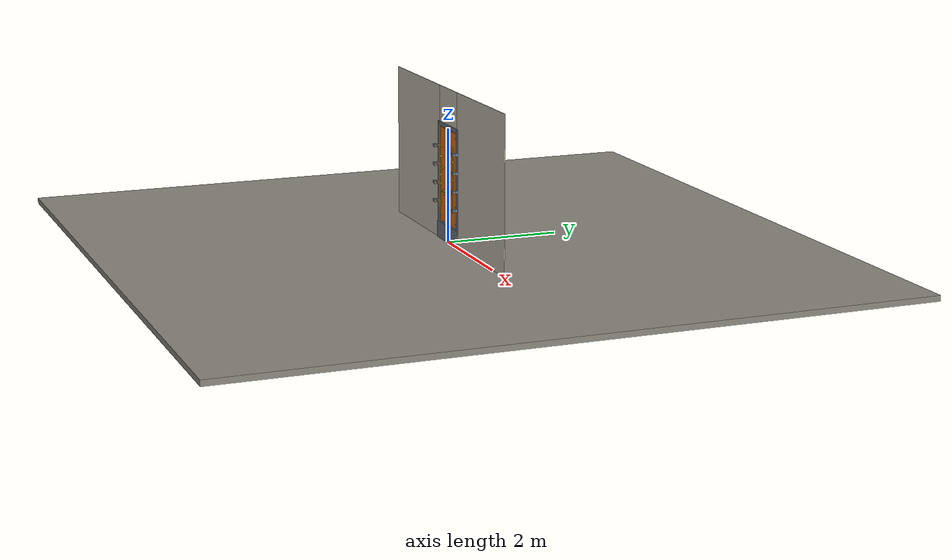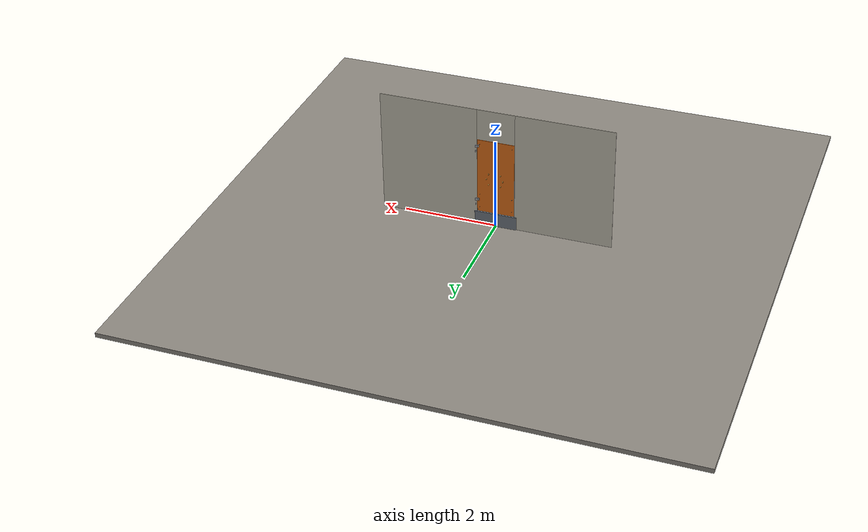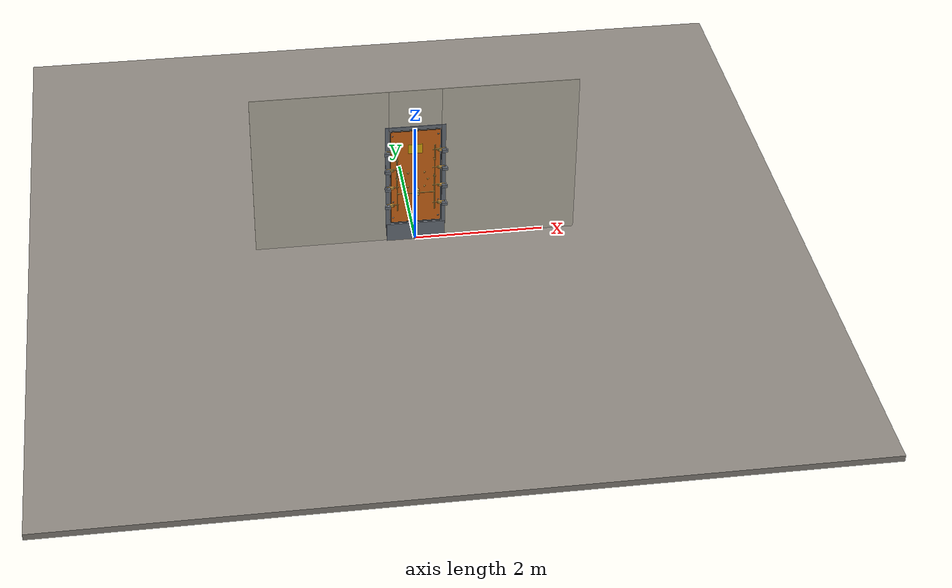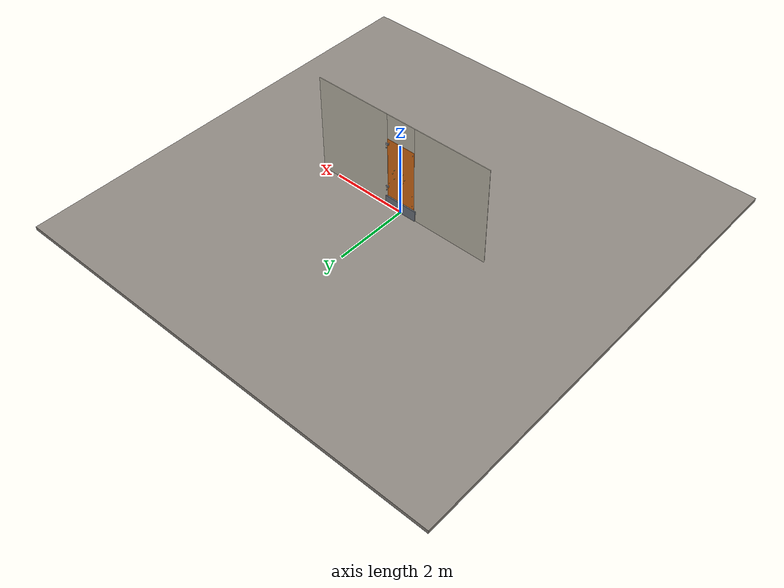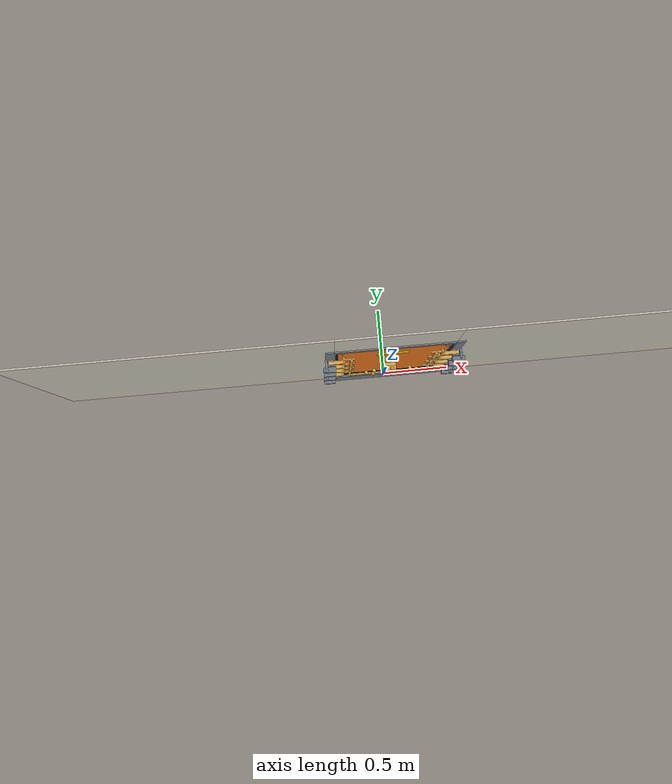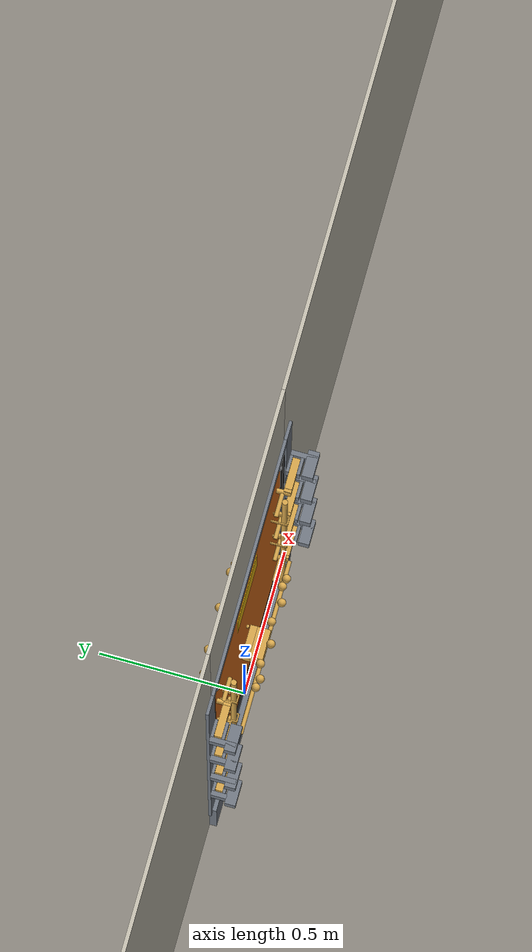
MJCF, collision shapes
<?xml version="1.0" ?>
<mujoco model="db0314_ship_watertight_full">
  <compiler angle="radian" meshdir="../../hardware" texturedir="../../textures" autolimits="true" inertiafromgeom="false"/>
  <option timestep="0.002" integrator="implicitfast" cone="elliptic" impratio="10" noslip_iterations="3">
    <flag multiccd="enable"/>
  </option>
  <size memory="16M"/>
  <default>
    <geom condim="4" solref="0.005 1" solimp="0.95 0.99 0.001"/>
    <joint solreflimit="0.005 1" solimplimit="0.95 0.99 0.001"/>
    <tendon solreflimit="0.005 1"/>
    <equality solref="0.002 1"/>
  </default>
  <visual>
    <headlight ambient="0.4 0.4 0.4" diffuse="0.7 0.7 0.7" specular="0.2 0.2 0.2"/>
    <quality shadowsize="4096"/>
    <map znear="0.01" zfar="60"/>
  </visual>
  <asset>
    <mesh name="hinge_aa6f1f959a" file="hinge_aa6f1f959a.obj"/>
    <mesh name="hinge_jamb_5a3d6f5c54" file="hinge_jamb_5a3d6f5c54.obj"/>
    <mesh name="wheel_9768cee49b" file="wheel_9768cee49b.obj"/>
    <material name="mat_floor" rgba="0.55 0.53 0.5 1" specular="0.2" shininess="0.15" reflectance="0"/>
    <material name="mat_wall" rgba="0.78 0.76 0.7 1" specular="0.2" shininess="0.1" reflectance="0"/>
    <material name="mat_leaf" rgba="0.9 0.45 0.1 1" specular="0.23" shininess="0.32" reflectance="0.02"/>
    <material name="mat_rivet" rgba="0.55 0.56 0.58 1" specular="0.8" shininess="0.55" reflectance="0.4"/>
    <material name="mat_frame" rgba="0.45 0.48 0.52 1" specular="0.32" shininess="0.6" reflectance="0.08"/>
    <material name="mat_gasket" rgba="0.08 0.08 0.08 1" specular="0.2" shininess="0.1" reflectance="0"/>
    <material name="mat_op_brass" rgba="0.85 0.66 0.3 1" specular="0.8" shininess="0.75" reflectance="0.4"/>
    <material name="mat_trim" rgba="0.85 0.66 0.3 1" specular="0.8" shininess="0.75" reflectance="0.4"/>
    <material name="mat_hinge" rgba="0.65 0.66 0.68 1" specular="0.74" shininess="0.5" reflectance="0.36"/>
    <material name="mat_placard" rgba="0.95 0.75 0.05 1" specular="0.2" shininess="0.5" reflectance="0"/>
    <texture name="skybox" type="skybox" builtin="gradient" rgb1="0.6 0.7 0.85" rgb2="0.9 0.92 0.95" width="256" height="256"/>
  </asset>
  <worldbody>
    <light name="sun" pos="1.5 -2.5 4" dir="-0.3 0.5 -0.8" directional="true" diffuse="0.8 0.8 0.8" specular="0.3 0.3 0.3" castshadow="true"/>
    <light name="fill" pos="-1.5 2.5 3" dir="0.3 -0.5 -0.7" directional="true" diffuse="0.35 0.35 0.4" castshadow="false"/>
    <camera name="robot_view" pos="0 -2.228125 1.628875" xyaxes="1 0 0 0 0.26963 0.962964" fovy="52"/>
    <camera name="far_view" pos="0 2.228125 1.628875" xyaxes="-1 0 0 0 -0.26963 0.962964" fovy="52"/>
    <camera name="iso" pos="-1.693375 -1.871625 1.985375" xyaxes="0.741536 -0.670913 0 0.242917 0.268487 0.932151" fovy="46"/>
    <camera name="detail_handle" pos="0.181 -0.884 1.61" xyaxes="0.97561 0.219512 0 -0.070934 0.315262 0.94635" fovy="38"/>
    <geom name="floor" type="box" size="6 6 0.05" pos="0 0 -0.05" material="mat_floor" group="0" contype="1" conaffinity="1" friction="0.8 0.005 0.0001" density="2400"/>
    <geom name="wall_left" type="box" size="1.0475 0.006 1.35" pos="-1.4525 0 1.35" material="mat_wall" group="0" contype="1" conaffinity="1" friction="0.6 0.005 0.0001" density="800"/>
    <geom name="wall_right" type="box" size="1.0475 0.006 1.35" pos="1.4525 0 1.35" material="mat_wall" group="0" contype="1" conaffinity="1" friction="0.6 0.005 0.0001" density="800"/>
    <geom name="wall_header" type="box" size="0.405 0.006 0.345" pos="0 0 2.355" material="mat_wall" group="0" contype="1" conaffinity="1" friction="0.6 0.005 0.0001" density="800"/>
    <geom name="flange_l" type="box" size="0.03 0.006 0.915" pos="-0.435 -0.01 1.155" material="mat_frame" group="0" contype="1" conaffinity="1" friction="0.6 0.005 0.0001" solref="0.02 1" density="7850"/>
    <geom name="flange_r" type="box" size="0.03 0.006 0.915" pos="0.435 -0.01 1.155" material="mat_frame" group="0" contype="1" conaffinity="1" friction="0.6 0.005 0.0001" solref="0.02 1" density="7850"/>
    <geom name="flange_t" type="box" size="0.405 0.006 0.03" pos="0 -0.01 2.04" material="mat_frame" group="0" contype="1" conaffinity="1" friction="0.6 0.005 0.0001" solref="0.02 1" density="7850"/>
    <geom name="flange_b" type="box" size="0.405 0.006 0.03" pos="0 -0.01 0.27" material="mat_frame" group="0" contype="1" conaffinity="1" friction="0.6 0.005 0.0001" solref="0.02 1" density="7850"/>
    <geom name="coaming" type="box" size="0.455 0.03 0.15" pos="0 0 0.15" material="mat_frame" group="0" contype="1" conaffinity="1" friction="0.6 0.005 0.0001" density="7850"/>
    <geom name="cleat_0" type="box" size="0.0275 0.005 0.025" pos="-0.4265 -0.0205 0.6625" material="mat_frame" group="0" contype="1" conaffinity="1" friction="0.6 0.005 0.0001" density="7850"/>
    <geom name="cleat_0_outer" type="box" size="0.0275 0.005 0.025" pos="-0.4265 -0.0555 0.6625" material="mat_frame" group="0" contype="1" conaffinity="1" friction="0.6 0.005 0.0001" density="7850"/>
    <geom name="cleat_0_base" type="box" size="0.0425 0.018 0.025" pos="-0.4415 -0.084 0.6625" material="mat_frame" group="0" contype="1" conaffinity="1" friction="0.6 0.005 0.0001" density="7850"/>
    <geom name="cleat_0_bridge" type="box" size="0.008 0.041 0.025" pos="-0.462 -0.057 0.6625" material="mat_frame" group="0" contype="1" conaffinity="1" friction="0.6 0.005 0.0001" density="7850"/>
    <geom name="cleat_1" type="box" size="0.0275 0.005 0.025" pos="0.4285 -0.0205 0.6625" material="mat_frame" group="0" contype="1" conaffinity="1" friction="0.6 0.005 0.0001" density="7850"/>
    <geom name="cleat_1_outer" type="box" size="0.0275 0.005 0.025" pos="0.4285 -0.0555 0.6625" material="mat_frame" group="0" contype="1" conaffinity="1" friction="0.6 0.005 0.0001" density="7850"/>
    <geom name="cleat_1_base" type="box" size="0.0425 0.018 0.025" pos="0.4435 -0.084 0.6625" material="mat_frame" group="0" contype="1" conaffinity="1" friction="0.6 0.005 0.0001" density="7850"/>
    <geom name="cleat_1_bridge" type="box" size="0.008 0.041 0.025" pos="0.464 -0.057 0.6625" material="mat_frame" group="0" contype="1" conaffinity="1" friction="0.6 0.005 0.0001" density="7850"/>
    <geom name="cleat_2" type="box" size="0.0275 0.005 0.025" pos="-0.4265 -0.0205 0.9875" material="mat_frame" group="0" contype="1" conaffinity="1" friction="0.6 0.005 0.0001" density="7850"/>
    <geom name="cleat_2_outer" type="box" size="0.0275 0.005 0.025" pos="-0.4265 -0.0555 0.9875" material="mat_frame" group="0" contype="1" conaffinity="1" friction="0.6 0.005 0.0001" density="7850"/>
    <geom name="cleat_2_base" type="box" size="0.0425 0.018 0.025" pos="-0.4415 -0.084 0.9875" material="mat_frame" group="0" contype="1" conaffinity="1" friction="0.6 0.005 0.0001" density="7850"/>
    <geom name="cleat_2_bridge" type="box" size="0.008 0.041 0.025" pos="-0.462 -0.057 0.9875" material="mat_frame" group="0" contype="1" conaffinity="1" friction="0.6 0.005 0.0001" density="7850"/>
    <geom name="cleat_3" type="box" size="0.0275 0.005 0.025" pos="0.4285 -0.0205 0.9875" material="mat_frame" group="0" contype="1" conaffinity="1" friction="0.6 0.005 0.0001" density="7850"/>
    <geom name="cleat_3_outer" type="box" size="0.0275 0.005 0.025" pos="0.4285 -0.0555 0.9875" material="mat_frame" group="0" contype="1" conaffinity="1" friction="0.6 0.005 0.0001" density="7850"/>
    <geom name="cleat_3_base" type="box" size="0.0425 0.018 0.025" pos="0.4435 -0.084 0.9875" material="mat_frame" group="0" contype="1" conaffinity="1" friction="0.6 0.005 0.0001" density="7850"/>
    <geom name="cleat_3_bridge" type="box" size="0.008 0.041 0.025" pos="0.464 -0.057 0.9875" material="mat_frame" group="0" contype="1" conaffinity="1" friction="0.6 0.005 0.0001" density="7850"/>
    <geom name="cleat_4" type="box" size="0.0275 0.005 0.025" pos="-0.4265 -0.0205 1.3125" material="mat_frame" group="0" contype="1" conaffinity="1" friction="0.6 0.005 0.0001" density="7850"/>
    <geom name="cleat_4_outer" type="box" size="0.0275 0.005 0.025" pos="-0.4265 -0.0555 1.3125" material="mat_frame" group="0" contype="1" conaffinity="1" friction="0.6 0.005 0.0001" density="7850"/>
    <geom name="cleat_4_base" type="box" size="0.0425 0.018 0.025" pos="-0.4415 -0.084 1.3125" material="mat_frame" group="0" contype="1" conaffinity="1" friction="0.6 0.005 0.0001" density="7850"/>
    <geom name="cleat_4_bridge" type="box" size="0.008 0.041 0.025" pos="-0.462 -0.057 1.3125" material="mat_frame" group="0" contype="1" conaffinity="1" friction="0.6 0.005 0.0001" density="7850"/>
    <geom name="cleat_5" type="box" size="0.0275 0.005 0.025" pos="0.4285 -0.0205 1.3125" material="mat_frame" group="0" contype="1" conaffinity="1" friction="0.6 0.005 0.0001" density="7850"/>
    <geom name="cleat_5_outer" type="box" size="0.0275 0.005 0.025" pos="0.4285 -0.0555 1.3125" material="mat_frame" group="0" contype="1" conaffinity="1" friction="0.6 0.005 0.0001" density="7850"/>
    <geom name="cleat_5_base" type="box" size="0.0425 0.018 0.025" pos="0.4435 -0.084 1.3125" material="mat_frame" group="0" contype="1" conaffinity="1" friction="0.6 0.005 0.0001" density="7850"/>
    <geom name="cleat_5_bridge" type="box" size="0.008 0.041 0.025" pos="0.464 -0.057 1.3125" material="mat_frame" group="0" contype="1" conaffinity="1" friction="0.6 0.005 0.0001" density="7850"/>
    <geom name="cleat_6" type="box" size="0.0275 0.005 0.025" pos="-0.4265 -0.0205 1.6375" material="mat_frame" group="0" contype="1" conaffinity="1" friction="0.6 0.005 0.0001" density="7850"/>
    <geom name="cleat_6_outer" type="box" size="0.0275 0.005 0.025" pos="-0.4265 -0.0555 1.6375" material="mat_frame" group="0" contype="1" conaffinity="1" friction="0.6 0.005 0.0001" density="7850"/>
    <geom name="cleat_6_base" type="box" size="0.0425 0.018 0.025" pos="-0.4415 -0.084 1.6375" material="mat_frame" group="0" contype="1" conaffinity="1" friction="0.6 0.005 0.0001" density="7850"/>
    <geom name="cleat_6_bridge" type="box" size="0.008 0.041 0.025" pos="-0.462 -0.057 1.6375" material="mat_frame" group="0" contype="1" conaffinity="1" friction="0.6 0.005 0.0001" density="7850"/>
    <geom name="cleat_7" type="box" size="0.0275 0.005 0.025" pos="0.4285 -0.0205 1.6375" material="mat_frame" group="0" contype="1" conaffinity="1" friction="0.6 0.005 0.0001" density="7850"/>
    <geom name="cleat_7_outer" type="box" size="0.0275 0.005 0.025" pos="0.4285 -0.0555 1.6375" material="mat_frame" group="0" contype="1" conaffinity="1" friction="0.6 0.005 0.0001" density="7850"/>
    <geom name="cleat_7_base" type="box" size="0.0425 0.018 0.025" pos="0.4435 -0.084 1.6375" material="mat_frame" group="0" contype="1" conaffinity="1" friction="0.6 0.005 0.0001" density="7850"/>
    <geom name="cleat_7_bridge" type="box" size="0.008 0.041 0.025" pos="0.464 -0.057 1.6375" material="mat_frame" group="0" contype="1" conaffinity="1" friction="0.6 0.005 0.0001" density="7850"/>
    <geom name="hinge_0_jamb" type="mesh" mesh="hinge_jamb_5a3d6f5c54" pos="0.435 0.024 0.554" quat="0 0 0 1" material="mat_hinge" group="1" contype="0" conaffinity="0" density="7850"/>
    <geom name="hinge_0_jamb_lug" type="box" size="0.01 0.004 0.02" pos="0.435 0.01 0.467" material="mat_hinge" group="1" contype="0" conaffinity="0" density="7850"/>
    <geom name="hinge_1_jamb" type="mesh" mesh="hinge_jamb_5a3d6f5c54" pos="0.435 0.024 1.824" quat="0 0 0 1" material="mat_hinge" group="1" contype="0" conaffinity="0" density="7850"/>
    <geom name="hinge_1_jamb_lug" type="box" size="0.01 0.004 0.02" pos="0.435 0.01 1.737" material="mat_hinge" group="1" contype="0" conaffinity="0" density="7850"/>
    <site name="approach_point" pos="0 -1.5 0" quat="1 0 0 0" size="0.05" rgba="0.2 0.9 0.2 0.5" group="4"/>
    <site name="goal_point" pos="0 1.5 0" quat="1 0 0 0" size="0.05" rgba="0.2 0.9 0.2 0.5" group="4"/>
    <site name="door_plane_center" pos="0 0 1.155" quat="1 0 0 0" size="0.02" rgba="0.2 0.9 0.2 0.5" group="4"/>
    <body name="leaf" pos="0.405 0 0.3">
      <inertial pos="-0.391122 -0.001907 0.840476" mass="86.167076" quat="0.501804 -0.500395 -0.500878 -0.496908" diaginertia="4.753482521 20.461829816 25.191326272"/>
      <joint name="leaf_hinge" type="hinge" axis="0 0 -1" pos="0.03 0.024 0" limited="true" range="0 2.356194" solreflimit="0.02 1" damping="0.175755" frictionloss="5.335522" armature="0.02"/>
      <geom name="leaf_slab" type="box" size="0.4 0.004 0.85" pos="-0.404 0 0.854" material="mat_leaf" group="0" contype="1" conaffinity="1" friction="0.4 0.005 0.0001" density="1"/>
      <geom name="leaf_rivet_0_0" type="sphere" size="0.012" pos="-0.054 -0.004 0.104" material="mat_rivet" group="2" contype="0" conaffinity="0" density="7850"/>
      <geom name="leaf_rivet_0_1" type="sphere" size="0.012" pos="-0.754 -0.004 0.104" material="mat_rivet" group="2" contype="0" conaffinity="0" density="7850"/>
      <geom name="leaf_rivet_1_0" type="sphere" size="0.012" pos="-0.054 -0.004 0.404" material="mat_rivet" group="2" contype="0" conaffinity="0" density="7850"/>
      <geom name="leaf_rivet_1_1" type="sphere" size="0.012" pos="-0.754 -0.004 0.404" material="mat_rivet" group="2" contype="0" conaffinity="0" density="7850"/>
      <geom name="leaf_rivet_5_0" type="sphere" size="0.012" pos="-0.054 -0.004 1.604" material="mat_rivet" group="2" contype="0" conaffinity="0" density="7850"/>
      <geom name="leaf_rivet_5_1" type="sphere" size="0.012" pos="-0.754 -0.004 1.604" material="mat_rivet" group="2" contype="0" conaffinity="0" density="7850"/>
      <geom name="gasket_l" type="box" size="0.01 0.004 0.84" pos="-0.014 -0.008 0.854" material="mat_gasket" group="1" contype="0" conaffinity="0" density="1100"/>
      <geom name="gasket_r" type="box" size="0.01 0.004 0.84" pos="-0.794 -0.008 0.854" material="mat_gasket" group="1" contype="0" conaffinity="0" density="1100"/>
      <geom name="gasket_b" type="box" size="0.39 0.004 0.01" pos="-0.404 -0.008 0.014" material="mat_gasket" group="1" contype="0" conaffinity="0" density="1100"/>
      <geom name="gasket_t" type="box" size="0.39 0.004 0.01" pos="-0.404 -0.008 1.694" material="mat_gasket" group="1" contype="0" conaffinity="0" density="1100"/>
      <geom name="wheel_gearbox_mount" type="box" size="0.05 0.0125 0.045" pos="-0.404 -0.0155 0.59" material="mat_op_brass" group="1" contype="0" conaffinity="0" density="7800"/>
      <geom name="wheel_gearbox" type="box" size="0.05 0.022 0.045" pos="-0.404 -0.049 0.59" material="mat_op_brass" group="1" contype="0" conaffinity="0" density="7800"/>
      <geom name="linkage_rod_r_guide_0_leg_n" type="box" size="0.008 0.002 0.02725" pos="-0.6815 -0.03125 0.85" quat="0.5 0.5 -0.5 0.5" material="mat_op_brass" group="1" contype="0" conaffinity="0" density="7800"/>
      <geom name="linkage_rod_r_guide_0_leg_p" type="box" size="0.008 0.002 0.02725" pos="-0.7065 -0.03125 0.85" quat="0.5 0.5 -0.5 0.5" material="mat_op_brass" group="1" contype="0" conaffinity="0" density="7800"/>
      <geom name="linkage_rod_r_guide_0_bridge" type="box" size="0.008 0.0145 0.002" pos="-0.694 -0.0565 0.85" quat="0.5 0.5 -0.5 0.5" material="mat_op_brass" group="1" contype="0" conaffinity="0" density="7800"/>
      <geom name="linkage_rod_r_guide_1_leg_n" type="box" size="0.008 0.002 0.02725" pos="-0.6815 -0.03125 1.175" quat="0.5 0.5 -0.5 0.5" material="mat_op_brass" group="1" contype="0" conaffinity="0" density="7800"/>
      <geom name="linkage_rod_r_guide_1_leg_p" type="box" size="0.008 0.002 0.02725" pos="-0.7065 -0.03125 1.175" quat="0.5 0.5 -0.5 0.5" material="mat_op_brass" group="1" contype="0" conaffinity="0" density="7800"/>
      <geom name="linkage_rod_r_guide_1_bridge" type="box" size="0.008 0.0145 0.002" pos="-0.694 -0.0565 1.175" quat="0.5 0.5 -0.5 0.5" material="mat_op_brass" group="1" contype="0" conaffinity="0" density="7800"/>
      <geom name="linkage_rod_l_guide_0_leg_n" type="box" size="0.008 0.002 0.02725" pos="-0.1015 -0.03125 0.85" quat="0.5 0.5 -0.5 0.5" material="mat_op_brass" group="1" contype="0" conaffinity="0" density="7800"/>
      <geom name="linkage_rod_l_guide_0_leg_p" type="box" size="0.008 0.002 0.02725" pos="-0.1265 -0.03125 0.85" quat="0.5 0.5 -0.5 0.5" material="mat_op_brass" group="1" contype="0" conaffinity="0" density="7800"/>
      <geom name="linkage_rod_l_guide_0_bridge" type="box" size="0.008 0.0145 0.002" pos="-0.114 -0.0565 0.85" quat="0.5 0.5 -0.5 0.5" material="mat_op_brass" group="1" contype="0" conaffinity="0" density="7800"/>
      <geom name="linkage_rod_l_guide_1_leg_n" type="box" size="0.008 0.002 0.02725" pos="-0.1015 -0.03125 1.175" quat="0.5 0.5 -0.5 0.5" material="mat_op_brass" group="1" contype="0" conaffinity="0" density="7800"/>
      <geom name="linkage_rod_l_guide_1_leg_p" type="box" size="0.008 0.002 0.02725" pos="-0.1265 -0.03125 1.175" quat="0.5 0.5 -0.5 0.5" material="mat_op_brass" group="1" contype="0" conaffinity="0" density="7800"/>
      <geom name="linkage_rod_l_guide_1_bridge" type="box" size="0.008 0.0145 0.002" pos="-0.114 -0.0565 1.175" quat="0.5 0.5 -0.5 0.5" material="mat_op_brass" group="1" contype="0" conaffinity="0" density="7800"/>
      <geom name="linkage_tube" type="cylinder" size="0.007 0.29" pos="-0.404 -0.066 0.59" quat="0.707107 0 0.707107 0" material="mat_op_brass" group="1" contype="0" conaffinity="0" density="7800"/>
      <geom name="hinge_0" type="mesh" mesh="hinge_aa6f1f959a" pos="0.03 0.024 0.254" quat="0 0 0 1" material="mat_hinge" group="1" contype="0" conaffinity="0" density="7850"/>
      <geom name="hinge_0_lug_foot" type="box" size="0.02 0.0045 0.03" pos="-0.026 0.0085 0.287" material="mat_hinge" group="1" contype="0" conaffinity="0" density="7850"/>
      <geom name="hinge_0_lug" type="box" size="0.026 0.0095 0.03" pos="0.01 0.0205 0.287" material="mat_hinge" group="1" contype="0" conaffinity="0" density="7850"/>
      <geom name="hinge_1" type="mesh" mesh="hinge_aa6f1f959a" pos="0.03 0.024 1.524" quat="0 0 0 1" material="mat_hinge" group="1" contype="0" conaffinity="0" density="7850"/>
      <geom name="hinge_1_lug_foot" type="box" size="0.02 0.0045 0.03" pos="-0.026 0.0085 1.557" material="mat_hinge" group="1" contype="0" conaffinity="0" density="7850"/>
      <geom name="hinge_1_lug" type="box" size="0.026 0.0095 0.03" pos="0.01 0.0205 1.557" material="mat_hinge" group="1" contype="0" conaffinity="0" density="7850"/>
      <geom name="warning_placard" type="box" size="0.11 0.001 0.08" pos="-0.404 -0.005 1.36" material="mat_placard" group="2" contype="0" conaffinity="0" density="1000"/>
      <body name="wheel" pos="-0.404 0 0.85">
        <inertial pos="0 0 0" mass="5.986828" quat="0 0 0.707107 0.707107" diaginertia="0.115516198 0.115516198 0.148211455"/>
        <joint name="wheel_hinge" type="hinge" axis="0 1 0" limited="true" range="0 9.4248" damping="0.5" frictionloss="2" armature="0.01"/>
        <geom name="wheel_spindle" type="cylinder" size="0.006 0.012" pos="0 0 0" quat="0.707107 -0.707107 0 0" material="mat_op_brass" group="1" contype="0" conaffinity="0" density="7850"/>
        <geom name="wheel_wheel_n" type="mesh" mesh="wheel_9768cee49b" pos="0 -0.004 0" quat="0 0 -0.707107 0.707107" material="mat_op_brass" group="1" contype="0" conaffinity="0" density="3000"/>
        <geom name="wheel_wheel_col_0_n" type="sphere" size="0.014" pos="0.18 -0.084 0" material="mat_op_brass" group="0" contype="1" conaffinity="1" friction="0.6 0.005 0.0001" density="3000"/>
        <geom name="wheel_wheel_col_1_n" type="sphere" size="0.014" pos="0.127279 -0.084 0.127279" material="mat_op_brass" group="0" contype="1" conaffinity="1" friction="0.6 0.005 0.0001" density="3000"/>
        <geom name="wheel_wheel_col_2_n" type="sphere" size="0.014" pos="0 -0.084 0.18" material="mat_op_brass" group="0" contype="1" conaffinity="1" friction="0.6 0.005 0.0001" density="3000"/>
        <geom name="wheel_wheel_col_3_n" type="sphere" size="0.014" pos="-0.127279 -0.084 0.127279" material="mat_op_brass" group="0" contype="1" conaffinity="1" friction="0.6 0.005 0.0001" density="3000"/>
        <geom name="wheel_wheel_col_4_n" type="sphere" size="0.014" pos="-0.18 -0.084 0" material="mat_op_brass" group="0" contype="1" conaffinity="1" friction="0.6 0.005 0.0001" density="3000"/>
        <geom name="wheel_wheel_col_5_n" type="sphere" size="0.014" pos="-0.127279 -0.084 -0.127279" material="mat_op_brass" group="0" contype="1" conaffinity="1" friction="0.6 0.005 0.0001" density="3000"/>
        <geom name="wheel_wheel_col_6_n" type="sphere" size="0.014" pos="0 -0.084 -0.18" material="mat_op_brass" group="0" contype="1" conaffinity="1" friction="0.6 0.005 0.0001" density="3000"/>
        <geom name="wheel_wheel_col_7_n" type="sphere" size="0.014" pos="0.127279 -0.084 -0.127279" material="mat_op_brass" group="0" contype="1" conaffinity="1" friction="0.6 0.005 0.0001" density="3000"/>
        <geom name="wheel_wheel_p" type="mesh" mesh="wheel_9768cee49b" pos="0 0.004 0" quat="0 0 0.707107 0.707107" material="mat_op_brass" group="1" contype="0" conaffinity="0" density="3000"/>
        <geom name="wheel_wheel_col_0_p" type="sphere" size="0.014" pos="0.18 0.084 0" material="mat_op_brass" group="0" contype="1" conaffinity="1" friction="0.6 0.005 0.0001" density="3000"/>
        <geom name="wheel_wheel_col_1_p" type="sphere" size="0.014" pos="0.127279 0.084 0.127279" material="mat_op_brass" group="0" contype="1" conaffinity="1" friction="0.6 0.005 0.0001" density="3000"/>
        <geom name="wheel_wheel_col_2_p" type="sphere" size="0.014" pos="0 0.084 0.18" material="mat_op_brass" group="0" contype="1" conaffinity="1" friction="0.6 0.005 0.0001" density="3000"/>
        <geom name="wheel_wheel_col_3_p" type="sphere" size="0.014" pos="-0.127279 0.084 0.127279" material="mat_op_brass" group="0" contype="1" conaffinity="1" friction="0.6 0.005 0.0001" density="3000"/>
        <geom name="wheel_wheel_col_4_p" type="sphere" size="0.014" pos="-0.18 0.084 0" material="mat_op_brass" group="0" contype="1" conaffinity="1" friction="0.6 0.005 0.0001" density="3000"/>
        <geom name="wheel_wheel_col_5_p" type="sphere" size="0.014" pos="-0.127279 0.084 -0.127279" material="mat_op_brass" group="0" contype="1" conaffinity="1" friction="0.6 0.005 0.0001" density="3000"/>
        <geom name="wheel_wheel_col_6_p" type="sphere" size="0.014" pos="0 0.084 -0.18" material="mat_op_brass" group="0" contype="1" conaffinity="1" friction="0.6 0.005 0.0001" density="3000"/>
        <geom name="wheel_wheel_col_7_p" type="sphere" size="0.014" pos="0.127279 0.084 -0.127279" material="mat_op_brass" group="0" contype="1" conaffinity="1" friction="0.6 0.005 0.0001" density="3000"/>
        <site name="wheel_grip_n" pos="0 -0.084 0.18" quat="1 0 0 0" size="0.012" rgba="0.2 0.9 0.2 0.5" group="4"/>
        <site name="wheel_grip_p" pos="0 0.084 0.18" quat="1 0 0 0" size="0.012" rgba="0.2 0.9 0.2 0.5" group="4"/>
      </body>
      <body name="dog_0" pos="-0.744 0 0.3625">
        <inertial pos="-0.03941 -0.036144 0" mass="1.27371" quat="0.706505 0.706505 0.029155 0.029155" diaginertia="0.000225936 0.00196141 0.002015712"/>
        <joint name="dog_0_hinge" type="hinge" axis="0 -1 0" limited="true" range="0 1.5708" damping="0.5" frictionloss="0.5" armature="0.005"/>
        <geom name="dog_0_rod_crank" type="cylinder" size="0.007 0.04" pos="0.04 -0.024 0" quat="0.707107 0 0.707107 0" material="mat_op_brass" group="1" contype="0" conaffinity="0" density="7800"/>
        <geom name="dog_0_wedge" type="box" size="0.05 0.012 0.02" pos="-0.06 -0.038 0" material="mat_op_brass" group="0" contype="1" conaffinity="1" friction="0.6 0.005 0.0001" density="7800"/>
        <geom name="dog_0_shaft" type="cylinder" size="0.008 0.025" pos="0 -0.025 0" quat="0.707107 -0.707107 0 0" material="mat_op_brass" group="1" contype="0" conaffinity="0" density="7800"/>
        <geom name="dog_0_crank" type="box" size="0.026 0.012 0.018" pos="-0.026 -0.038 0" material="mat_op_brass" group="1" contype="0" conaffinity="0" density="7800"/>
      </body>
      <body name="dog_1" pos="-0.064 0 0.3625">
        <inertial pos="0.03941 -0.036144 0" mass="1.27371" quat="0.706505 0.706505 -0.029155 -0.029155" diaginertia="0.000225936 0.00196141 0.002015712"/>
        <joint name="dog_1_hinge" type="hinge" axis="0 1 0" limited="true" range="0 1.5708" damping="0.5" frictionloss="0.5" armature="0.005"/>
        <geom name="dog_1_rod_crank" type="cylinder" size="0.007 0.04" pos="-0.04 -0.024 0" quat="0.707107 0 0.707107 0" material="mat_op_brass" group="1" contype="0" conaffinity="0" density="7800"/>
        <geom name="dog_1_wedge" type="box" size="0.05 0.012 0.02" pos="0.06 -0.038 0" material="mat_op_brass" group="0" contype="1" conaffinity="1" friction="0.6 0.005 0.0001" density="7800"/>
        <geom name="dog_1_shaft" type="cylinder" size="0.008 0.025" pos="0 -0.025 0" quat="0.707107 -0.707107 0 0" material="mat_op_brass" group="1" contype="0" conaffinity="0" density="7800"/>
        <geom name="dog_1_crank" type="box" size="0.026 0.012 0.018" pos="0.026 -0.038 0" material="mat_op_brass" group="1" contype="0" conaffinity="0" density="7800"/>
      </body>
      <body name="dog_2" pos="-0.744 0 0.6875">
        <inertial pos="-0.03941 -0.036144 0" mass="1.27371" quat="0.706505 0.706505 0.029155 0.029155" diaginertia="0.000225936 0.00196141 0.002015712"/>
        <joint name="dog_2_hinge" type="hinge" axis="0 -1 0" limited="true" range="0 1.5708" damping="0.5" frictionloss="0.5" armature="0.005"/>
        <geom name="dog_2_rod_crank" type="cylinder" size="0.007 0.04" pos="0.04 -0.024 0" quat="0.707107 0 0.707107 0" material="mat_op_brass" group="1" contype="0" conaffinity="0" density="7800"/>
        <geom name="dog_2_wedge" type="box" size="0.05 0.012 0.02" pos="-0.06 -0.038 0" material="mat_op_brass" group="0" contype="1" conaffinity="1" friction="0.6 0.005 0.0001" density="7800"/>
        <geom name="dog_2_shaft" type="cylinder" size="0.008 0.025" pos="0 -0.025 0" quat="0.707107 -0.707107 0 0" material="mat_op_brass" group="1" contype="0" conaffinity="0" density="7800"/>
        <geom name="dog_2_crank" type="box" size="0.026 0.012 0.018" pos="-0.026 -0.038 0" material="mat_op_brass" group="1" contype="0" conaffinity="0" density="7800"/>
      </body>
      <body name="dog_3" pos="-0.064 0 0.6875">
        <inertial pos="0.03941 -0.036144 0" mass="1.27371" quat="0.706505 0.706505 -0.029155 -0.029155" diaginertia="0.000225936 0.00196141 0.002015712"/>
        <joint name="dog_3_hinge" type="hinge" axis="0 1 0" limited="true" range="0 1.5708" damping="0.5" frictionloss="0.5" armature="0.005"/>
        <geom name="dog_3_rod_crank" type="cylinder" size="0.007 0.04" pos="-0.04 -0.024 0" quat="0.707107 0 0.707107 0" material="mat_op_brass" group="1" contype="0" conaffinity="0" density="7800"/>
        <geom name="dog_3_wedge" type="box" size="0.05 0.012 0.02" pos="0.06 -0.038 0" material="mat_op_brass" group="0" contype="1" conaffinity="1" friction="0.6 0.005 0.0001" density="7800"/>
        <geom name="dog_3_shaft" type="cylinder" size="0.008 0.025" pos="0 -0.025 0" quat="0.707107 -0.707107 0 0" material="mat_op_brass" group="1" contype="0" conaffinity="0" density="7800"/>
        <geom name="dog_3_crank" type="box" size="0.026 0.012 0.018" pos="0.026 -0.038 0" material="mat_op_brass" group="1" contype="0" conaffinity="0" density="7800"/>
      </body>
      <body name="dog_4" pos="-0.744 0 1.0125">
        <inertial pos="-0.03941 -0.036144 0" mass="1.27371" quat="0.706505 0.706505 0.029155 0.029155" diaginertia="0.000225936 0.00196141 0.002015712"/>
        <joint name="dog_4_hinge" type="hinge" axis="0 -1 0" limited="true" range="0 1.5708" damping="0.5" frictionloss="0.5" armature="0.005"/>
        <geom name="dog_4_rod_crank" type="cylinder" size="0.007 0.04" pos="0.04 -0.024 0" quat="0.707107 0 0.707107 0" material="mat_op_brass" group="1" contype="0" conaffinity="0" density="7800"/>
        <geom name="dog_4_wedge" type="box" size="0.05 0.012 0.02" pos="-0.06 -0.038 0" material="mat_op_brass" group="0" contype="1" conaffinity="1" friction="0.6 0.005 0.0001" density="7800"/>
        <geom name="dog_4_shaft" type="cylinder" size="0.008 0.025" pos="0 -0.025 0" quat="0.707107 -0.707107 0 0" material="mat_op_brass" group="1" contype="0" conaffinity="0" density="7800"/>
        <geom name="dog_4_crank" type="box" size="0.026 0.012 0.018" pos="-0.026 -0.038 0" material="mat_op_brass" group="1" contype="0" conaffinity="0" density="7800"/>
      </body>
      <body name="dog_5" pos="-0.064 0 1.0125">
        <inertial pos="0.03941 -0.036144 0" mass="1.27371" quat="0.706505 0.706505 -0.029155 -0.029155" diaginertia="0.000225936 0.00196141 0.002015712"/>
        <joint name="dog_5_hinge" type="hinge" axis="0 1 0" limited="true" range="0 1.5708" damping="0.5" frictionloss="0.5" armature="0.005"/>
        <geom name="dog_5_rod_crank" type="cylinder" size="0.007 0.04" pos="-0.04 -0.024 0" quat="0.707107 0 0.707107 0" material="mat_op_brass" group="1" contype="0" conaffinity="0" density="7800"/>
        <geom name="dog_5_wedge" type="box" size="0.05 0.012 0.02" pos="0.06 -0.038 0" material="mat_op_brass" group="0" contype="1" conaffinity="1" friction="0.6 0.005 0.0001" density="7800"/>
        <geom name="dog_5_shaft" type="cylinder" size="0.008 0.025" pos="0 -0.025 0" quat="0.707107 -0.707107 0 0" material="mat_op_brass" group="1" contype="0" conaffinity="0" density="7800"/>
        <geom name="dog_5_crank" type="box" size="0.026 0.012 0.018" pos="0.026 -0.038 0" material="mat_op_brass" group="1" contype="0" conaffinity="0" density="7800"/>
      </body>
      <body name="dog_6" pos="-0.744 0 1.3375">
        <inertial pos="-0.03941 -0.036144 0" mass="1.27371" quat="0.706505 0.706505 0.029155 0.029155" diaginertia="0.000225936 0.00196141 0.002015712"/>
        <joint name="dog_6_hinge" type="hinge" axis="0 -1 0" limited="true" range="0 1.5708" damping="0.5" frictionloss="0.5" armature="0.005"/>
        <geom name="dog_6_rod_crank" type="cylinder" size="0.007 0.04" pos="0.04 -0.024 0" quat="0.707107 0 0.707107 0" material="mat_op_brass" group="1" contype="0" conaffinity="0" density="7800"/>
        <geom name="dog_6_wedge" type="box" size="0.05 0.012 0.02" pos="-0.06 -0.038 0" material="mat_op_brass" group="0" contype="1" conaffinity="1" friction="0.6 0.005 0.0001" density="7800"/>
        <geom name="dog_6_shaft" type="cylinder" size="0.008 0.025" pos="0 -0.025 0" quat="0.707107 -0.707107 0 0" material="mat_op_brass" group="1" contype="0" conaffinity="0" density="7800"/>
        <geom name="dog_6_crank" type="box" size="0.026 0.012 0.018" pos="-0.026 -0.038 0" material="mat_op_brass" group="1" contype="0" conaffinity="0" density="7800"/>
      </body>
      <body name="dog_7" pos="-0.064 0 1.3375">
        <inertial pos="0.03941 -0.036144 0" mass="1.27371" quat="0.706505 0.706505 -0.029155 -0.029155" diaginertia="0.000225936 0.00196141 0.002015712"/>
        <joint name="dog_7_hinge" type="hinge" axis="0 1 0" limited="true" range="0 1.5708" damping="0.5" frictionloss="0.5" armature="0.005"/>
        <geom name="dog_7_rod_crank" type="cylinder" size="0.007 0.04" pos="-0.04 -0.024 0" quat="0.707107 0 0.707107 0" material="mat_op_brass" group="1" contype="0" conaffinity="0" density="7800"/>
        <geom name="dog_7_wedge" type="box" size="0.05 0.012 0.02" pos="0.06 -0.038 0" material="mat_op_brass" group="0" contype="1" conaffinity="1" friction="0.6 0.005 0.0001" density="7800"/>
        <geom name="dog_7_shaft" type="cylinder" size="0.008 0.025" pos="0 -0.025 0" quat="0.707107 -0.707107 0 0" material="mat_op_brass" group="1" contype="0" conaffinity="0" density="7800"/>
        <geom name="dog_7_crank" type="box" size="0.026 0.012 0.018" pos="0.026 -0.038 0" material="mat_op_brass" group="1" contype="0" conaffinity="0" density="7800"/>
      </body>
      <body name="linkage_rod_r" pos="-0.694 0 0">
        <inertial pos="0 -0.044 0.85" mass="2.332208" quat="0.707107 0 0.707107 0" diaginertia="0.000094454 0.268372666 0.268372666"/>
        <joint name="linkage_rod_r_slide" type="slide" axis="0 0 1" limited="true" range="0 0.05" damping="2" frictionloss="0.5" armature="0.05"/>
        <geom name="linkage_rod_r_geom" type="cylinder" size="0.009 0.5875" pos="0 -0.044 0.85" material="mat_op_brass" group="1" contype="0" conaffinity="0" density="7800"/>
      </body>
      <body name="linkage_rod_l" pos="-0.114 0 0">
        <inertial pos="0 -0.044 0.85" mass="2.332208" quat="0.707107 0 0.707107 0" diaginertia="0.000094454 0.268372666 0.268372666"/>
        <joint name="linkage_rod_l_slide" type="slide" axis="0 0 1" limited="true" range="0 0.05" damping="2" frictionloss="0.5" armature="0.05"/>
        <geom name="linkage_rod_l_geom" type="cylinder" size="0.009 0.5875" pos="0 -0.044 0.85" material="mat_op_brass" group="1" contype="0" conaffinity="0" density="7800"/>
      </body>
    </body>
  </worldbody>
  <equality>
    <joint name="wheel_dog_0" joint1="dog_0_hinge" joint2="wheel_hinge" polycoef="0 0.166667 0 0 0" active="true"/>
    <joint name="wheel_dog_1" joint1="dog_1_hinge" joint2="wheel_hinge" polycoef="0 0.166667 0 0 0" active="true"/>
    <joint name="wheel_dog_2" joint1="dog_2_hinge" joint2="wheel_hinge" polycoef="0 0.166667 0 0 0" active="true"/>
    <joint name="wheel_dog_3" joint1="dog_3_hinge" joint2="wheel_hinge" polycoef="0 0.166667 0 0 0" active="true"/>
    <joint name="wheel_dog_4" joint1="dog_4_hinge" joint2="wheel_hinge" polycoef="0 0.166667 0 0 0" active="true"/>
    <joint name="wheel_dog_5" joint1="dog_5_hinge" joint2="wheel_hinge" polycoef="0 0.166667 0 0 0" active="true"/>
    <joint name="wheel_dog_6" joint1="dog_6_hinge" joint2="wheel_hinge" polycoef="0 0.166667 0 0 0" active="true"/>
    <joint name="wheel_dog_7" joint1="dog_7_hinge" joint2="wheel_hinge" polycoef="0 0.166667 0 0 0" active="true"/>
    <joint name="wheel_rod_r" joint1="linkage_rod_r_slide" joint2="wheel_hinge" polycoef="0 0.005305 0 0 0" active="true"/>
    <joint name="wheel_rod_l" joint1="linkage_rod_l_slide" joint2="wheel_hinge" polycoef="0 0.005305 0 0 0" active="true"/>
  </equality>
  <sensor>
    <jointpos name="leaf_hinge_pos" joint="leaf_hinge"/>
    <jointvel name="leaf_hinge_vel" joint="leaf_hinge"/>
    <jointpos name="wheel_hinge_pos" joint="wheel_hinge"/>
    <jointvel name="wheel_hinge_vel" joint="wheel_hinge"/>
    <jointpos name="dog_0_hinge_pos" joint="dog_0_hinge"/>
    <jointvel name="dog_0_hinge_vel" joint="dog_0_hinge"/>
    <jointpos name="dog_1_hinge_pos" joint="dog_1_hinge"/>
    <jointvel name="dog_1_hinge_vel" joint="dog_1_hinge"/>
    <jointpos name="dog_2_hinge_pos" joint="dog_2_hinge"/>
    <jointvel name="dog_2_hinge_vel" joint="dog_2_hinge"/>
    <jointpos name="dog_3_hinge_pos" joint="dog_3_hinge"/>
    <jointvel name="dog_3_hinge_vel" joint="dog_3_hinge"/>
    <jointpos name="dog_4_hinge_pos" joint="dog_4_hinge"/>
    <jointvel name="dog_4_hinge_vel" joint="dog_4_hinge"/>
    <jointpos name="dog_5_hinge_pos" joint="dog_5_hinge"/>
    <jointvel name="dog_5_hinge_vel" joint="dog_5_hinge"/>
    <jointpos name="dog_6_hinge_pos" joint="dog_6_hinge"/>
    <jointvel name="dog_6_hinge_vel" joint="dog_6_hinge"/>
    <jointpos name="dog_7_hinge_pos" joint="dog_7_hinge"/>
    <jointvel name="dog_7_hinge_vel" joint="dog_7_hinge"/>
  </sensor>
</mujoco>
